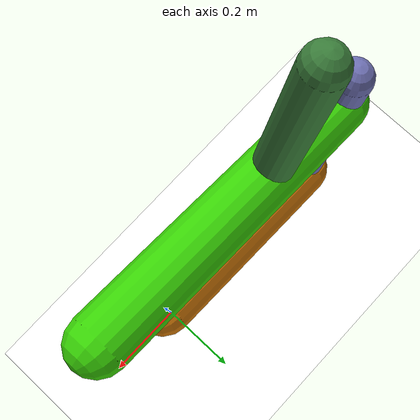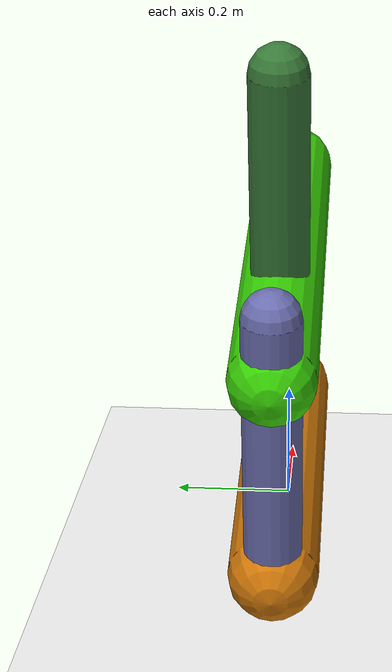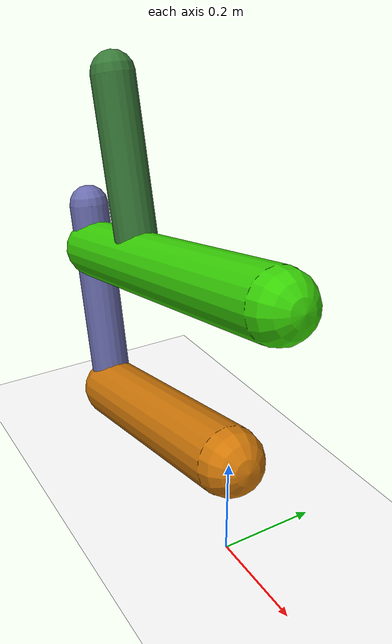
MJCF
<mujoco model="morphology">
  <option timestep="0.01"/>
  <default>
    <default class="/"/>
  </default>
  <asset>
    <texture name="texplane" type="2d" builtin="checker" rgb1="0.1 0.2 0.3" rgb2="0.2 0.3 0.4" width="300" height="300"/>
    <material name="MatPlane" class="/" texture="texplane" texrepeat="20 20" specular="1" shininess="1" reflectance="0.5"/>
  </asset>
  <worldbody>
    <light name="//unnamed_light_0" class="/" directional="true" pos="0 0 1.5" dir="0 0 -1.3" cutoff="1e+02" exponent="1" diffuse="1 1 1" specular="0.1 0.1 0.1"/>
    <geom name="ground" class="/" type="plane" size="15 15 0.5" material="MatPlane" rgba="1 1 1 1"/>
    <body name="body" pos="0 0 0.21">
      <geom name="geom0" class="/" type="capsule" contype="1" conaffinity="1" condim="3" size="0.069" rgba="0.82 0.47 0.031 1" friction="0.4 0.1 0.1" fromto="0 0 0 -0.51 0 -0.11"/>
      <body name="body1" pos="-0.51 0 -0.11">
        <geom name="geom1" class="/" type="capsule" contype="1" conaffinity="1" condim="3" size="0.044" rgba="0.42 0.43 0.69 1" friction="0.4 0.1 0.1" fromto="0 0 0 -0.089 0 0.44"/>
        <body name="body2" pos="-0.069 0 0.34">
          <geom name="geom2" class="/" type="capsule" contype="1" conaffinity="1" condim="3" size="0.065" rgba="0.22 0.82 0.021 1" friction="0.4 0.1 0.1" fromto="0 0 0 0.7 0 0.14"/>
          <body name="body3" pos="0.23 0 0.048">
            <geom name="geom3" class="/" type="capsule" contype="1" conaffinity="1" condim="3" size="0.045" rgba="0.22 0.48 0.22 1" friction="0.4 0.1 0.1" fromto="0 0 0 -0.094 0 0.36"/>
            <joint name="joint3" class="/" type="hinge" axis="0 1 0" limited="true" stiffness="20" range="-49 49" armature="0.1" damping="2"/>
          </body>
          <joint name="joint2" class="/" type="hinge" axis="0 1 0" limited="true" stiffness="20" range="-38 38" armature="0.1" damping="2"/>
        </body>
        <joint name="joint1" class="/" type="hinge" axis="0 1 0" limited="true" stiffness="20" range="-56 56" armature="0.1" damping="2"/>
      </body>
      <joint name="rootx" class="/" type="slide" axis="1 0 0" limited="false" stiffness="0" armature="0" damping="0"/>
      <joint name="rootz" class="/" type="slide" axis="0 0 1" limited="false" stiffness="0" armature="0" damping="0"/>
      <joint name="rooty" class="/" type="hinge" axis="0 1 0" limited="false" stiffness="0" armature="0" damping="0"/>
    </body>
  </worldbody>
  <actuator>
    <motor name="motor3" class="/" ctrllimited="true" ctrlrange="-1 1" gear="1.5e+02" joint="joint3"/>
    <motor name="motor2" class="/" ctrllimited="true" ctrlrange="-1 1" gear="1.4e+02" joint="joint2"/>
    <motor name="motor1" class="/" ctrllimited="true" ctrlrange="-1 1" gear="1.5e+02" joint="joint1"/>
  </actuator>
  <sensor>
    <subtreelinvel name="velocity" body="body"/>
  </sensor>
</mujoco>
